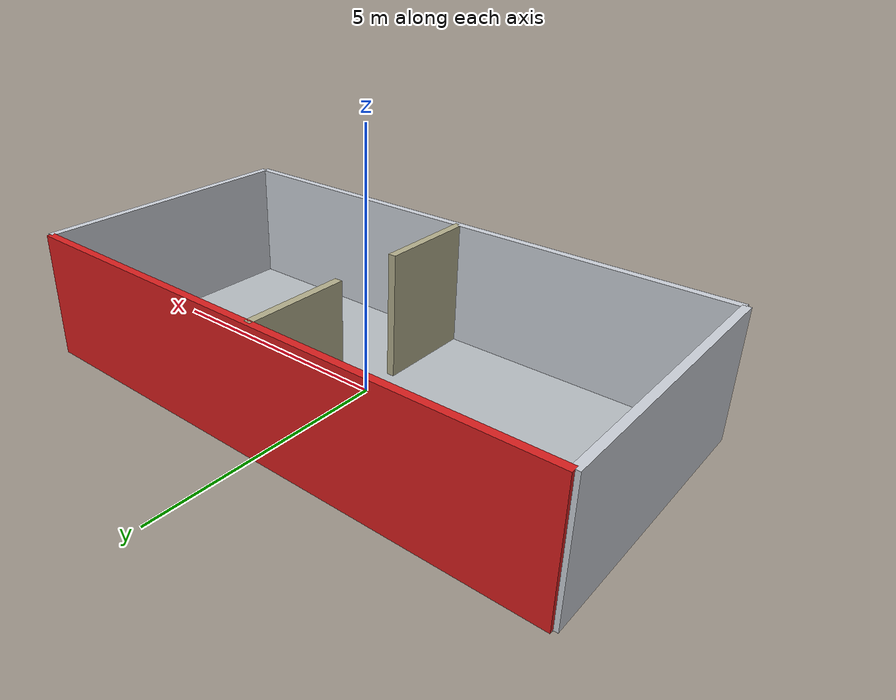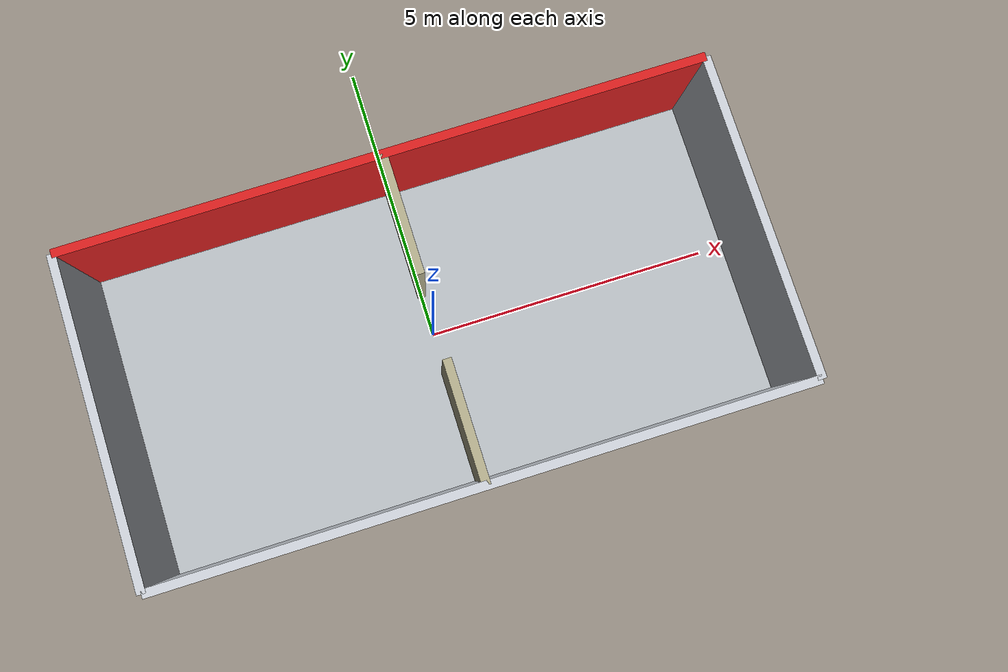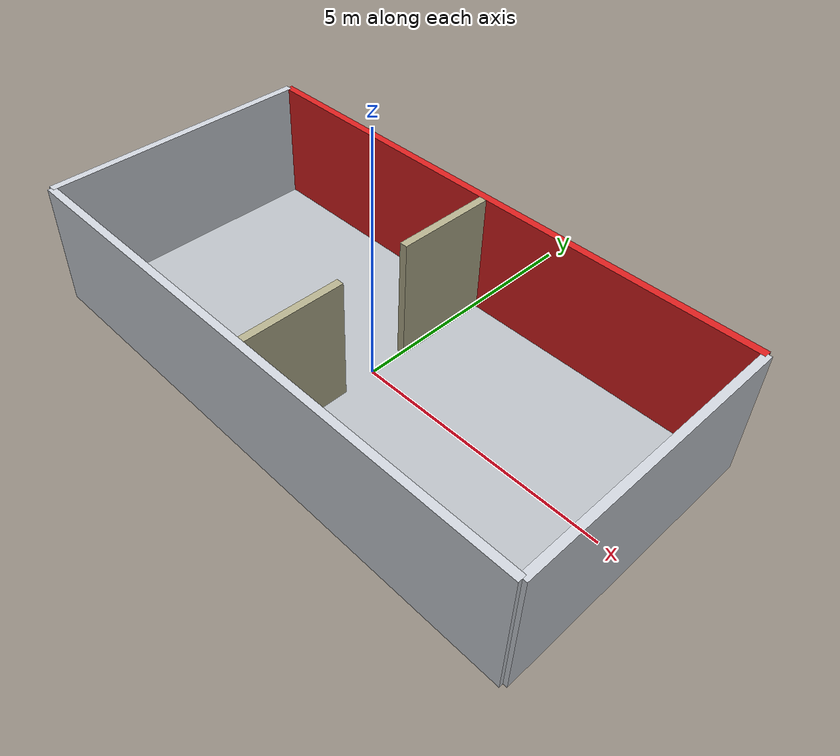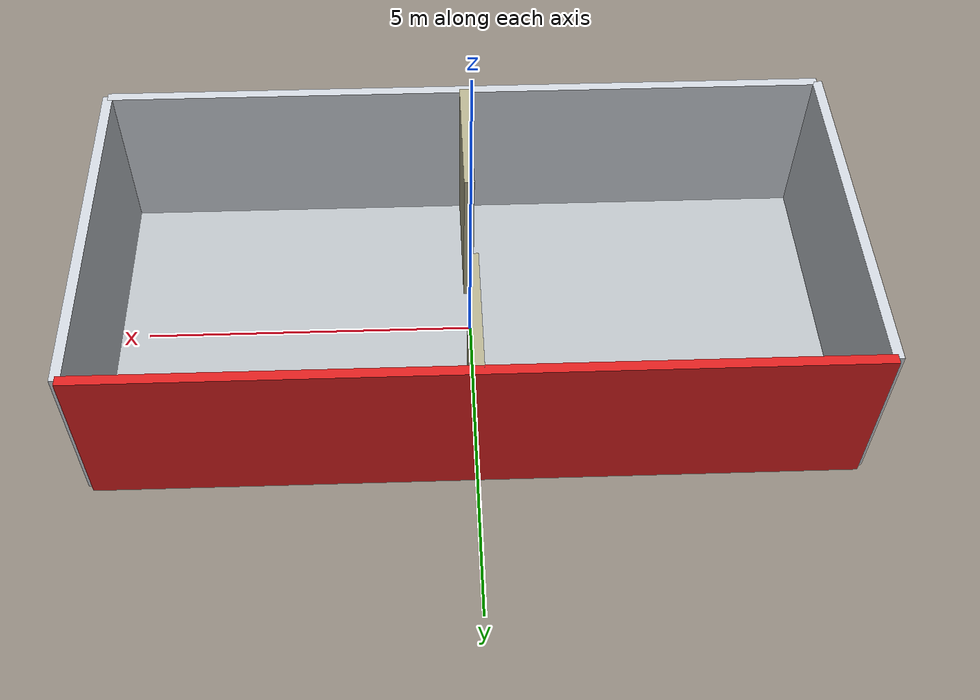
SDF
<sdf version="1.9">
 <world name="two_rooms">
  <physics name="1ms" type="ignored">
   <max_step_size>0.001</max_step_size>
   <real_time_factor>1.0</real_time_factor>
  </physics>
  <plugin filename="gz-sim-physics-system" name="gz::sim::systems::Physics"/>
  <plugin filename="gz-sim-scene-broadcaster-system" name="gz::sim::systems::SceneBroadcaster"/>
  <plugin filename="gz-sim-user-commands-system" name="gz::sim::systems::UserCommands"/>
  <plugin filename="gz-sim-sensors-system" name="gz::sim::systems::Sensors">
   <render_engine>ogre2</render_engine>
  </plugin>
  <plugin filename="gz-sim-imu-system" name="gz::sim::systems::Imu"/>
  <plugin filename="gz-sim-navsat-system" name="gz::sim::systems::NavSat"/>
  <spherical_coordinates>
   <latitude_deg>-35.363262</latitude_deg>
   <longitude_deg>149.165237</longitude_deg>
   <elevation>584.0</elevation>
   <heading_deg>0</heading_deg>
   <surface_model>EARTH_WGS84</surface_model>
  </spherical_coordinates>
  <light type="directional" name="main_light">
   <cast_shadows>false</cast_shadows>
   <pose>0 0 10 0 0 0</pose>
   <diffuse>1.0 1.0 1.0 1</diffuse>
   <specular>0.5 0.5 0.5 1</specular>
   <direction>0.1 0.1 -1</direction>
  </light>
  <model name="floor">
   <static>true</static>
   <link name="link">
    <collision name="c"><geometry><box><size>11.0 5.5 0.05</size></box></geometry></collision>
    <visual name="v">
     <geometry><box><size>11.0 5.5 0.05</size></box></geometry>
     <material>
      <ambient>0.72 0.74 0.76 1</ambient>
      <diffuse>0.72 0.74 0.76 1</diffuse>
      <specular>0.1 0.1 0.1 1</specular>
     </material>
    </visual>
   </link>
  </model>
  <model name="outer_south">
   <static>true</static>
   <pose>0.0000 -2.7500 1.250 0 0 0.00000</pose>
   <link name="link">
    <collision name="c"><geometry><box><size>11.0000 0.1500 2.500</size></box></geometry></collision>
    <visual name="v">
     <geometry><box><size>11.0000 0.1500 2.500</size></box></geometry>
     <material>
      <ambient>0.8 0.82 0.85 1</ambient>
      <diffuse>0.8 0.82 0.85 1</diffuse>
      <specular>0.1 0.1 0.1 1</specular>
     </material>
    </visual>
   </link>
  </model>
  <model name="outer_north">
   <static>true</static>
   <pose>0.0000 2.7500 1.250 0 0 0.00000</pose>
   <link name="link">
    <collision name="c"><geometry><box><size>11.0000 0.1500 2.500</size></box></geometry></collision>
    <visual name="v">
     <geometry><box><size>11.0000 0.1500 2.500</size></box></geometry>
     <material>
      <ambient>0.85 0.12 0.12 1</ambient>
      <diffuse>0.85 0.12 0.12 1</diffuse>
      <specular>0.1 0.1 0.1 1</specular>
     </material>
    </visual>
   </link>
  </model>
  <model name="outer_west">
   <static>true</static>
   <pose>-5.5000 0.0000 1.250 0 0 0.00000</pose>
   <link name="link">
    <collision name="c"><geometry><box><size>0.1500 5.5000 2.500</size></box></geometry></collision>
    <visual name="v">
     <geometry><box><size>0.1500 5.5000 2.500</size></box></geometry>
     <material>
      <ambient>0.8 0.82 0.85 1</ambient>
      <diffuse>0.8 0.82 0.85 1</diffuse>
      <specular>0.1 0.1 0.1 1</specular>
     </material>
    </visual>
   </link>
  </model>
  <model name="outer_east">
   <static>true</static>
   <pose>5.5000 0.0000 1.250 0 0 0.00000</pose>
   <link name="link">
    <collision name="c"><geometry><box><size>0.1500 5.5000 2.500</size></box></geometry></collision>
    <visual name="v">
     <geometry><box><size>0.1500 5.5000 2.500</size></box></geometry>
     <material>
      <ambient>0.8 0.82 0.85 1</ambient>
      <diffuse>0.8 0.82 0.85 1</diffuse>
      <specular>0.1 0.1 0.1 1</specular>
     </material>
    </visual>
   </link>
  </model>
  <model name="div_south">
   <static>true</static>
   <pose>0.0000 -1.7250 1.250 0 0 0.00000</pose>
   <link name="link">
    <collision name="c"><geometry><box><size>0.1500 2.0500 2.500</size></box></geometry></collision>
    <visual name="v">
     <geometry><box><size>0.1500 2.0500 2.500</size></box></geometry>
     <material>
      <ambient>0.7 0.68 0.55 1</ambient>
      <diffuse>0.7 0.68 0.55 1</diffuse>
      <specular>0.1 0.1 0.1 1</specular>
     </material>
    </visual>
   </link>
  </model>
  <model name="div_north">
   <static>true</static>
   <pose>0.0000 1.7250 1.250 0 0 0.00000</pose>
   <link name="link">
    <collision name="c"><geometry><box><size>0.1500 2.0500 2.500</size></box></geometry></collision>
    <visual name="v">
     <geometry><box><size>0.1500 2.0500 2.500</size></box></geometry>
     <material>
      <ambient>0.7 0.68 0.55 1</ambient>
      <diffuse>0.7 0.68 0.55 1</diffuse>
      <specular>0.1 0.1 0.1 1</specular>
     </material>
    </visual>
   </link>
  </model>
 </world>
</sdf>
